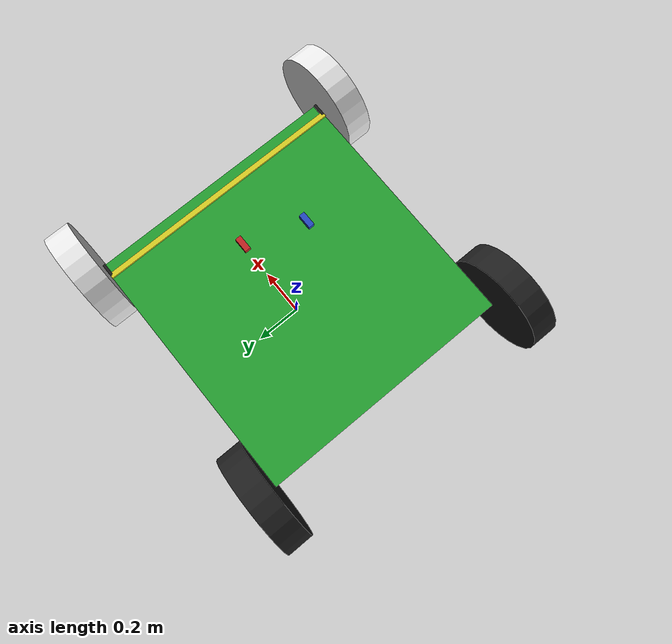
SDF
<?xml version="2.0"?>
<sdf version="1.4">
<!--This version works well in heightmap.world-->
  <!-- 25.5kg total mass -->
    <model name="test_model">
    <!--Offset position for the whole car. This should be heigher than the height of the terrain.-->
    <!--After inserted into the world, the vehicle will follow the terrain despite of the terrain unstable surface.-->
    <!--The following z should be > the max of the heights of the terrain-->
    <!--0 0 1 for flat ground_plane and 0 0 5.8 for my heightmap road2-->
    <pose>0 0 1 0 0 0</pose>
    <link name="link">
      <inertial>
        <inertia>
          <ixx>1</ixx>
          <ixy>0</ixy>
          <ixz>0</ixz>
          <iyy>1</iyy>
          <iyz>0</iyz>
          <izz>1</izz>
        </inertia>
        <mass>21.0</mass>
      </inertial>
      <collision name="collision">
        <pose>0 0 0 0 0 0</pose>
        <geometry>
          <box>
            <size>1 1 0.1</size>
          </box>
        </geometry>
        <surface>
          <friction>
            <ode>
              <mu>1</mu>
              <mu2>1</mu2>
            </ode>
          </friction>
          <contact>
            <ode>
              <max_vel>100</max_vel>
            </ode>
          </contact>
        </surface>
      </collision>
      <visual name="visual">
        <pose>0 0 -0.55 0 0 0</pose>
        <geometry>
          <box>
            <size>1 1 0.1</size>
          </box>
        </geometry>
        <material>
        	<script>
        	  <uri>file://media/materials/scripts/gazebo.material</uri>
        	  <name>Gazebo/Green</name>
        	</script>
        </material>
      </visual>

    </link>
    <link name="bar_1">
      <pose>0.45 0 -0.5 0 0 0</pose>
      <inertial>
        <inertia>
          <ixx>0.001</ixx>
          <ixy>0</ixy>
          <ixz>0</ixz>
          <iyy>0.001</iyy>
          <iyz>0</iyz>
          <izz>0.001</izz>
        </inertia>
        <mass>0.1</mass>
      </inertial>
      <collision name="collision">
        <geometry>
          <box>
            <size>0.06 1.0 0.02</size>
          </box>
        </geometry>
        <surface>
          <friction>
            <ode>
              <mu>1</mu>
              <mu2>1</mu2>
            </ode>
          </friction>
          <contact>
            <ode>
              <max_vel>100</max_vel>
            </ode>
          </contact>
        </surface>
      </collision>
      <visual name="visual">
        <geometry>
          <box>
            <size>0.02 1.0 0.02</size>
          </box>
        </geometry>
        <material>
          <script>
        	  <uri>file://media/materials/scripts/gazebo.material</uri>
        	  <name>Gazebo/Yellow</name>
        	</script>
        </material>
      </visual>
    </link>
    <joint name="bar_12_joint" type="revolute">
      <parent>bar_2</parent>
      <child>bar_1</child>
      <pose>0 0.5 0 0 0 0</pose>
      <axis>
        <xyz>0 0 1</xyz>
      </axis>
    </joint>
    <joint name="bar_13_joint" type="revolute">
      <parent>bar_3</parent>
      <child>bar_1</child>
      <pose>0 -0.5 0 0 0 0</pose>
      <axis>
        <xyz>0 0 1</xyz>
      </axis>
    </joint>
    <link name="bar_2">
      <pose>0.5 0.5 -0.5 0 0 0</pose>
      <inertial>
        <inertia>
          <ixx>0.001</ixx>
          <ixy>0</ixy>
          <ixz>0</ixz>
          <iyy>0.001</iyy>
          <iyz>0</iyz>
          <izz>0.001</izz>
        </inertia>
        <mass>0.1</mass>
      </inertial>
      <collision name="collision">
        <pose>-0.025 0 0 0 0 0</pose>
        <geometry>
          <box>
            <size>0.08 0.05 0.05</size>
          </box>
        </geometry>
        <surface>
          <friction>
            <ode>
              <mu>1</mu>
              <mu2>1</mu2>
            </ode>
          </friction>
          <contact>
            <ode>
              <max_vel>100</max_vel>
            </ode>
          </contact>
        </surface>
      </collision>
      <visual name="visual">
        <pose>-0.025 0 0 0 0 0</pose>
        <geometry>
          <box>
            <size>0.05 0.02 0.02</size>
          </box>
        </geometry>
        <material>
          <script>
        	  <uri>file://media/materials/scripts/gazebo.material</uri>
        	  <name>Gazebo/Black</name>
        	</script>
        </material>
      </visual>
    </link>
    <joint name="bar_2_joint" type="revolute">
      <parent>link</parent>
      <child>bar_2</child>
      <pose>0 0 0 0 0 0</pose>
      <axis>
        <xyz>0 0 1</xyz>
        <limit><lower>-7.853</lower><upper>7.853</upper></limit>
      </axis>
    </joint>
    <link name="bar_3">
      <pose>0.5 -0.5 -0.5 0 0 0</pose>
      <inertial>
        <inertia>
          <ixx>0.001</ixx>
          <ixy>0</ixy>
          <ixz>0</ixz>
          <iyy>0.001</iyy>
          <iyz>0</iyz>
          <izz>0.001</izz>
        </inertia>
        <mass>0.1</mass>
      </inertial>
      <collision name="collision">
        <pose>-0.025 0 0 0 0 0</pose>
        <geometry>
          <box>
            <size>0.05 0.02 0.02</size>
          </box>
        </geometry>
        <surface>
          <friction>
            <ode>
              <mu>1</mu>
              <mu2>1</mu2>
            </ode>
          </friction>
          <contact>
            <ode>
              <max_vel>100</max_vel>
            </ode>
          </contact>
        </surface>
      </collision>
      <visual name="visual">
        <pose>-0.025 0 0 0 0 0</pose>
        <geometry>
          <box>
            <size>0.05 0.02 0.02</size>
          </box>
        </geometry>
        <material>
          <script>
        	  <uri>file://media/materials/scripts/gazebo.material</uri>
        	  <name>Gazebo/Black</name>
        	</script>
        </material>
      </visual>
    </link>
    <joint name="bar_3_joint" type="revolute">
      <parent>link</parent>
      <child>bar_3</child>
      <pose>0 0 0 0 0 0</pose>
      <axis>
        <xyz>0 0 1</xyz>
      </axis>
    </joint>
    <link name="wheel_1">
      <pose>0.5 0.55 -0.5 1.57079633 0 0</pose>
      <inertial>
        <inertia>
          <ixx>0.01</ixx>
          <ixy>0</ixy>
          <ixz>0</ixz>
          <iyy>0.01</iyy>
          <iyz>0</iyz>
          <izz>0.01</izz>
        </inertia>
        <mass>1.0</mass>
      </inertial>
      <collision name="collision">
        <geometry>
          <cylinder>
            <radius>0.2</radius>
            <length>0.1</length>
          </cylinder>
        </geometry>
        <surface>
          <friction>
            <ode>
              <fdir1>1 0 0</fdir1>
              <mu>1</mu>
              <mu2>1</mu2>
            </ode>
          </friction>
          <contact>
            <ode>
              <max_vel>100</max_vel>
            </ode>
          </contact>
        </surface>
      </collision>
      <visual name="visual">
        <geometry>
          <cylinder>
            <radius>0.2</radius>
            <length>0.1</length>
          </cylinder>
        </geometry>
        <material>
          <script>
        	  <uri>file://media/materials/scripts/gazebo.material</uri>
        	  <name>Gazebo/White</name>
        	</script>>
        </material>
      </visual>
    </link>
    <joint name="wheel_1_joint" type="revolute">
      <parent>bar_2</parent>
      <child>wheel_1</child>
      <pose>0 0 0 0 0 0</pose>
      <axis>
        <xyz>0 1 0</xyz>

      </axis>
    </joint>
    <link name="wheel_2">
      <pose>0.5 -0.55 -0.5 1.57079633 0 0</pose>
      <inertial>
        <inertia>
          <ixx>0.01</ixx>
          <ixy>0</ixy>
          <ixz>0</ixz>
          <iyy>0.01</iyy>
          <iyz>0</iyz>
          <izz>0.01</izz>
        </inertia>
        <mass>1.0</mass>
      </inertial>
      <collision name="collision">
        <geometry>
          <cylinder>
            <radius>0.2</radius>
            <length>0.1</length>
          </cylinder>
        </geometry>
        <surface>
          <friction>
            <ode>
              <fdir1>1 0 0</fdir1>
              <mu>1</mu>
              <mu2>1</mu2>
            </ode>
          </friction>
          <contact>
            <ode>
              <max_vel>100</max_vel>
            </ode>
          </contact>
        </surface>
      </collision>
      <visual name="visual">
        <geometry>
          <cylinder>
            <radius>0.2</radius>
            <length>0.1</length>
          </cylinder>
        </geometry>
        <material>
          <script>
        	  <uri>file://media/materials/scripts/gazebo.material</uri>
        	  <name>Gazebo/White</name>
        	</script>
        </material>
      </visual>
    </link>
    <joint name="wheel_2_joint" type="revolute">
      <parent>bar_3</parent>
      <child>wheel_2</child>
      <pose>0 0 0 0 0 0</pose>
      <axis>
        <xyz>0 1 0</xyz>
      </axis>
    </joint>
    <link name="wheel_3">
      <pose>-0.5 0.55 -0.5 1.57079633 0 0</pose>
      <inertial>
        <inertia>
          <ixx>0.01</ixx>
          <ixy>0</ixy>
          <ixz>0</ixz>
          <iyy>0.01</iyy>
          <iyz>0</iyz>
          <izz>0.01</izz>
        </inertia>
        <mass>1.0</mass>
      </inertial>
      <collision name="collision">
        <geometry>
          <cylinder>
            <radius>0.2</radius>
            <length>0.1</length>
          </cylinder>
        </geometry>
        <surface>
          <friction>
            <ode>
              <fdir1>1 0 0</fdir1>
              <mu>1</mu>
              <mu2>1</mu2>
            </ode>
          </friction>
          <contact>
            <ode>
              <max_vel>100</max_vel>
            </ode>
          </contact>
        </surface>
      </collision>
      <visual name="visual">
        <geometry>
          <cylinder>
            <radius>0.2</radius>
            <length>0.1</length>
          </cylinder>
        </geometry>
        <material>
          <script>
        	  <uri>file://media/materials/scripts/gazebo.material</uri>
        	  <name>Gazebo/Black</name>
        	</script>
        </material>
      </visual>
    </link>
    <joint name="wheel_3_joint" type="revolute">
      <parent>link</parent>
      <child>wheel_3</child>
      <pose>0 0 0 0 0 0</pose>
      <axis>
        <dynamics>
          <damping>0.0</damping>
          <friction>0.0</friction>
        </dynamics>
        <xyz>0 1 0</xyz>
      </axis>
    </joint>
    <link name="wheel_4">
      <pose>-0.5 -0.55 -0.5 1.57079633 0 0</pose>
      <inertial>
        <inertia>
          <ixx>0.01</ixx>
          <ixy>0</ixy>
          <ixz>0</ixz>
          <iyy>0.01</iyy>
          <iyz>0</iyz>
          <izz>0.01</izz>
        </inertia>
        <mass>1.0</mass>
      </inertial>
      <collision name="collision">
        <geometry>
          <cylinder>
            <radius>0.2</radius>
            <length>0.1</length>
          </cylinder>
        </geometry>
        <surface>
          <friction>
            <ode>
              <fdir1>1 0 0</fdir1>
              <mu>1</mu>
              <mu2>1</mu2>
            </ode>
          </friction>
          <contact>
            <ode>
              <max_vel>100</max_vel>
            </ode>
          </contact>
        </surface>
      </collision>
      <visual name="visual">
        <geometry>
          <cylinder>
            <radius>0.2</radius>
            <length>0.1</length>
          </cylinder>
        </geometry>
        <material>
          <script>
        	  <uri>file://media/materials/scripts/gazebo.material</uri>
        	  <name>Gazebo/Black</name>
        	</script>
        </material>
      </visual>
    </link>
    <joint name="wheel_4_joint" type="revolute">
      <parent>link</parent>
      <child>wheel_4</child>
      <pose>0 0 0 0 0 0</pose>
      <axis>
        <dynamics>
          <damping>0.0</damping>
          <friction>0.0</friction>
        </dynamics>
        <xyz>0 1 0</xyz>
      </axis>
    </joint>
    <!--Input brake_pedal, gas_pedal-->
    <link name="gas_pedal">
      <pose>0.1 -0.1 -0.1 0 0 0</pose>
      <inertial>
        <inertia>
          <ixx>0.001</ixx>
          <ixy>0</ixy>
          <ixz>0</ixz>
          <iyy>0.001</iyy>
          <iyz>0</iyz>
          <izz>0.001</izz>
        </inertia>
        <mass>0.1</mass>
      </inertial>
      <collision name="collision">
        <pose>0.04 0 0 0 0 0</pose>
        <geometry>
          <box>
            <size>0.05 0.02 0.02</size>
          </box>
        </geometry>
        <surface>
          <friction>
            <ode>
              <mu>1</mu>
              <mu2>1</mu2>
            </ode>
          </friction>
          <contact>
            <ode>
              <max_vel>100</max_vel>
            </ode>
          </contact>
        </surface>
      </collision>
      <visual name="visual">
        <pose>-0.025 0 0 0 0 0</pose>
        <geometry>
          <box>
            <size>0.05 0.02 0.02</size>
          </box>
        </geometry>
        <material>
          <script>
        	  <uri>file://media/materials/scripts/gazebo.material</uri>
        	  <name>Gazebo/Blue</name>
        	</script>
        </material>
      </visual>
    </link>
    <joint type="prismatic" name="gas_joint">
      <parent>link</parent>
      <child>gas_pedal</child>
      <axis>
        <xyz>1 0 0</xyz>
        <limit><lower>0</lower><upper>0.2</upper></limit>
      </axis>
    </joint>

    <link name="brake_pedal">
      <pose>0.1 0.1 -0.1 0 0 0</pose>
      <inertial>
        <inertia>
          <ixx>0.001</ixx>
          <ixy>0</ixy>
          <ixz>0</ixz>
          <iyy>0.001</iyy>
          <iyz>0</iyz>
          <izz>0.001</izz>
        </inertia>
        <mass>0.1</mass>
      </inertial>
      <collision name="collision">
        <pose>0.04 0 0 0 0 0</pose>
        <geometry>
          <box>
            <size>0.05 0.02 0.02</size>
          </box>
        </geometry>
        <surface>
          <friction>
            <ode>
              <mu>1</mu>
              <mu2>1</mu2>
            </ode>
          </friction>
          <contact>
            <ode>
              <max_vel>100</max_vel>
            </ode>
          </contact>
        </surface>
      </collision>
      <visual name="visual">
        <pose>0.04 0 0 0 0 0</pose>
        <geometry>
          <box>
            <size>0.05 0.02 0.02</size>
          </box>
        </geometry>
        <material>
          <script>
        	  <uri>file://media/materials/scripts/gazebo.material</uri>
        	  <name>Gazebo/Red</name>
        	</script>
        </material>
      </visual>
    </link>
    <joint type="prismatic" name="brake_joint">
      <parent>link</parent>
      <child>brake_pedal</child>
      <axis>
        <xyz>1 0 0</xyz>
        <limit><lower>0</lower><upper>0.2</upper></limit>
      </axis>
    </joint>
    <!--Plugin in here-->
    <plugin name="cart_test_plugin" filename="libCartDemoPlugin.so">
        <steer>bar_2_joint</steer>
        <steer_pid>10 0.1 0.5</steer_pid>
        <steer_ilim>-10 10</steer_ilim>
        <steer_pos>0.0</steer_pos>
        <!-- steer -->
        <steer_vel>0</steer_vel>
        <!-- not used -->
        <steer_eff>100.0</steer_eff>
        <!-- max pos pid effort -->
        <right>wheel_3_joint</right>
        <right_pid>0.1 0.0 0.001</right_pid>
        <right_ilim>-.1 .1</right_ilim>
        <right_pos>0</right_pos>
        <!-- final position pid -->
        <right_vel>0</right_vel>
        <!-- final velocity pid -->
        <right_eff>0.1</right_eff>
        <!-- drive torque -->
        <left>wheel_4_joint</left>
        <left_pid>0.1 0.0 0.001</left_pid>
        <left_ilim>-.1 .1</left_ilim>
        <left_pos>0</left_pos>
        <!-- final position pid -->
        <left_vel>0</left_vel>
        <!-- final velocity pid -->
        <left_eff>0.1</left_eff>
        <!-- drive torque -->
        <!-- Joint which controls the gas -->
     	  <gas>gas_joint</gas>
     	  <gas_pid>12 2 0</gas_pid>
        <gas_ilim>-3 3</gas_ilim>
     	  <!-- Joint which controls the gas -->
        <brake>brake_joint</brake>
        <brake_pid>-10.129 -1.02 0</brake_pid>
        <brake_ilim>-3 .3</brake_ilim>
	<!--Add two more joint identities-->
        <front_right>wheel_1_joint</front_right>
        <front_left>wheel_2_joint</front_left>
      	<!-- Power is multiplied by "gas" to determine force applied to wheels -->
      	<front_power>10</front_power>
        <rear_power>10</rear_power>
        <!-- The angle range the front tires can turn for steering, in radians -->
      <tire_angle_range>0.5</tire_angle_range>
      <!-- Maximum speed for the car in meters/second -->
      <max_speed>10</max_speed>
      <!-- Factor for the down-force applied as the car travels faster -->
      <!-- A larger number increases the down force -->
      <aero_load>0.1</aero_load>
      </plugin>
  </model>
</sdf>
